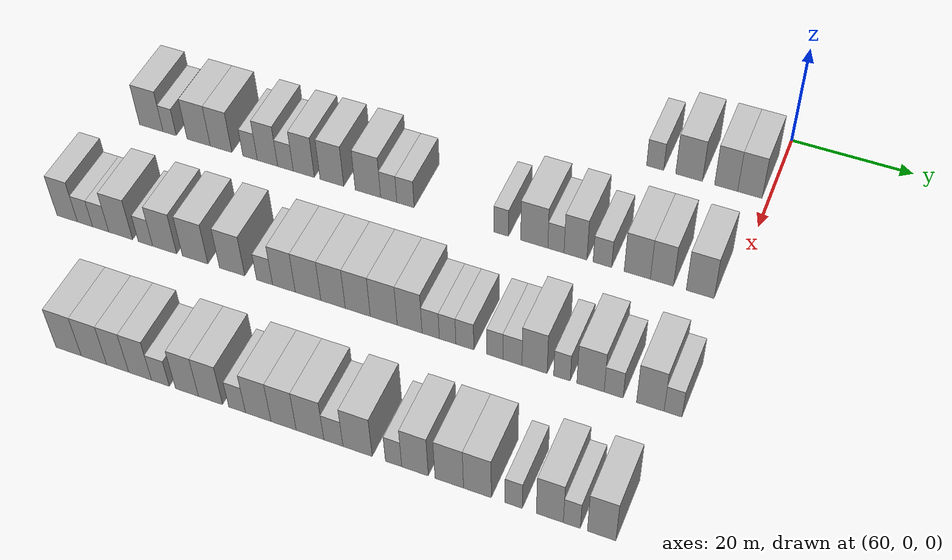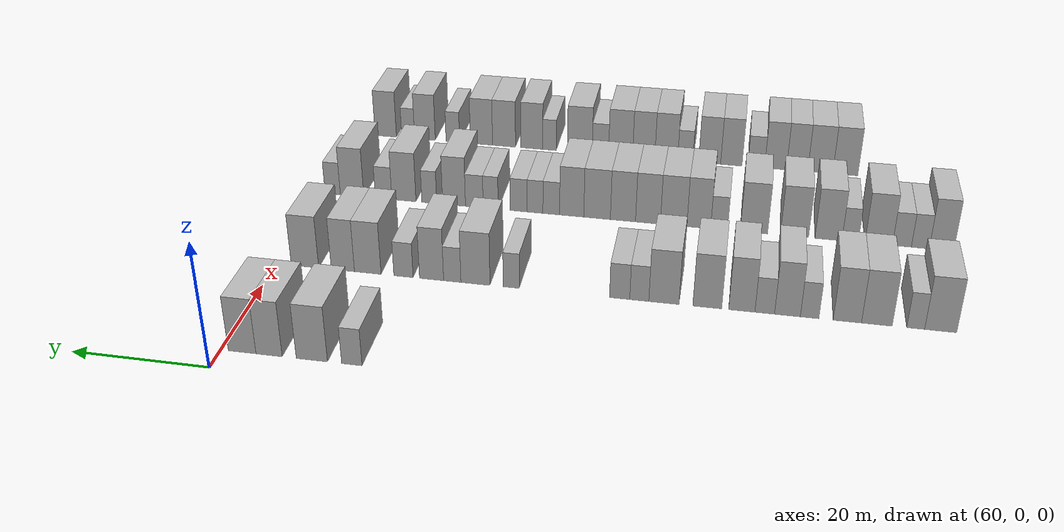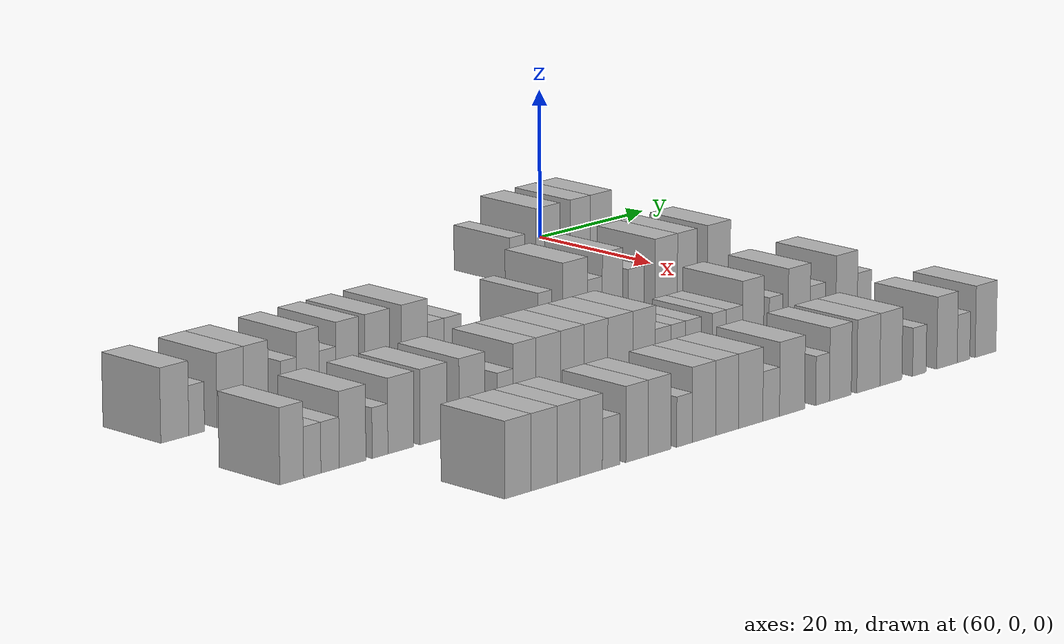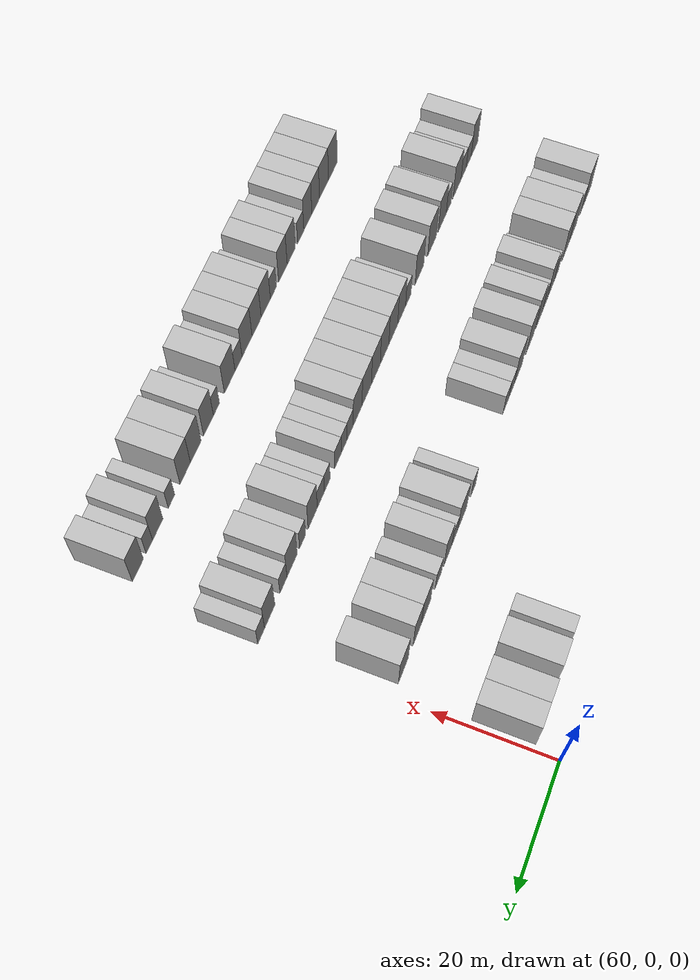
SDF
<sdf version="1.6">
 <world name="default">
  <model name="building_463">
   <static>1</static>
   <pose>69.0000 -18.7316 0 0.000000 0.000000 0.000000</pose>
   <link name="link">
    <pose>0 0 3.00 0 0 0</pose>
    <collision name="collision"><geometry><box><size>10.0000 2.8729 6.0000</size></box></geometry></collision>
    <visual name="visual">
     <cast_shadows>0</cast_shadows>
     <geometry><box><size>10.0000 2.8729 6.0000</size></box></geometry>
     <material>
      <script>
       <uri>model://HANNAS_wall/materials/scripts</uri>
       <uri>model://HANNAS_wall/materials/textures</uri>
       <name>vrc/HANNAS_wall</name>
      </script>
     </material>
    </visual>
   </link>
  </model>
  <model name="building_464">
   <static>1</static>
   <pose>69.0000 -13.0723 0 0.000000 0.000000 0.000000</pose>
   <link name="link">
    <pose>0 0 4.50 0 0 0</pose>
    <collision name="collision"><geometry><box><size>10.0000 4.4456 9.0000</size></box></geometry></collision>
    <visual name="visual">
     <cast_shadows>0</cast_shadows>
     <geometry><box><size>10.0000 4.4456 9.0000</size></box></geometry>
     <material>
      <script>
       <uri>model://HANNAS_wall/materials/scripts</uri>
       <uri>model://HANNAS_wall/materials/textures</uri>
       <name>vrc/HANNAS_wall</name>
      </script>
     </material>
    </visual>
   </link>
  </model>
  <model name="building_465">
   <static>1</static>
   <pose>69.0000 -6.9609 0 0.000000 0.000000 0.000000</pose>
   <link name="link">
    <pose>0 0 4.50 0 0 0</pose>
    <collision name="collision"><geometry><box><size>10.0000 3.7772 9.0000</size></box></geometry></collision>
    <visual name="visual">
     <cast_shadows>0</cast_shadows>
     <geometry><box><size>10.0000 3.7772 9.0000</size></box></geometry>
     <material>
      <script>
       <uri>model://HANNAS_wall/materials/scripts</uri>
       <uri>model://HANNAS_wall/materials/textures</uri>
       <name>vrc/HANNAS_wall</name>
      </script>
     </material>
    </visual>
   </link>
  </model>
  <model name="building_466">
   <static>1</static>
   <pose>69.0000 -3.0716 0 0.000000 0.000000 0.000000</pose>
   <link name="link">
    <pose>0 0 4.50 0 0 0</pose>
    <collision name="collision"><geometry><box><size>10.0000 4.0013 9.0000</size></box></geometry></collision>
    <visual name="visual">
     <cast_shadows>0</cast_shadows>
     <geometry><box><size>10.0000 4.0013 9.0000</size></box></geometry>
     <material>
      <script>
       <uri>model://HANNAS_wall/materials/scripts</uri>
       <uri>model://HANNAS_wall/materials/textures</uri>
       <name>vrc/HANNAS_wall</name>
      </script>
     </material>
    </visual>
   </link>
  </model>
  <model name="building_632">
   <static>1</static>
   <pose>91.0000 -98.0208 0 0.000000 0.000000 0.000000</pose>
   <link name="link">
    <pose>0 0 4.50 0 0 0</pose>
    <collision name="collision"><geometry><box><size>10.0000 4.3693 9.0000</size></box></geometry></collision>
    <visual name="visual">
     <cast_shadows>0</cast_shadows>
     <geometry><box><size>10.0000 4.3693 9.0000</size></box></geometry>
     <material>
      <script>
       <uri>model://HANNAS_wall/materials/scripts</uri>
       <uri>model://HANNAS_wall/materials/textures</uri>
       <name>vrc/HANNAS_wall</name>
      </script>
     </material>
    </visual>
   </link>
  </model>
  <model name="building_633">
   <static>1</static>
   <pose>91.0000 -94.6125 0 0.000000 0.000000 0.000000</pose>
   <link name="link">
    <pose>0 0 3.00 0 0 0</pose>
    <collision name="collision"><geometry><box><size>10.0000 2.4472 6.0000</size></box></geometry></collision>
    <visual name="visual">
     <cast_shadows>0</cast_shadows>
     <geometry><box><size>10.0000 2.4472 6.0000</size></box></geometry>
     <material>
      <script>
       <uri>model://HANNAS_wall/materials/scripts</uri>
       <uri>model://HANNAS_wall/materials/textures</uri>
       <name>vrc/HANNAS_wall</name>
      </script>
     </material>
    </visual>
   </link>
  </model>
  <model name="building_634">
   <static>1</static>
   <pose>91.0000 -89.2631 0 0.000000 0.000000 0.000000</pose>
   <link name="link">
    <pose>0 0 4.50 0 0 0</pose>
    <collision name="collision"><geometry><box><size>10.0000 4.2517 9.0000</size></box></geometry></collision>
    <visual name="visual">
     <cast_shadows>0</cast_shadows>
     <geometry><box><size>10.0000 4.2517 9.0000</size></box></geometry>
     <material>
      <script>
       <uri>model://HANNAS_wall/materials/scripts</uri>
       <uri>model://HANNAS_wall/materials/textures</uri>
       <name>vrc/HANNAS_wall</name>
      </script>
     </material>
    </visual>
   </link>
  </model>
  <model name="building_635">
   <static>1</static>
   <pose>91.0000 -85.1691 0 0.000000 0.000000 0.000000</pose>
   <link name="link">
    <pose>0 0 4.50 0 0 0</pose>
    <collision name="collision"><geometry><box><size>10.0000 3.9364 9.0000</size></box></geometry></collision>
    <visual name="visual">
     <cast_shadows>0</cast_shadows>
     <geometry><box><size>10.0000 3.9364 9.0000</size></box></geometry>
     <material>
      <script>
       <uri>model://HANNAS_wall/materials/scripts</uri>
       <uri>model://HANNAS_wall/materials/textures</uri>
       <name>vrc/HANNAS_wall</name>
      </script>
     </material>
    </visual>
   </link>
  </model>
  <model name="building_636">
   <static>1</static>
   <pose>91.0000 -79.8978 0 0.000000 0.000000 0.000000</pose>
   <link name="link">
    <pose>0 0 3.00 0 0 0</pose>
    <collision name="collision"><geometry><box><size>10.0000 2.6062 6.0000</size></box></geometry></collision>
    <visual name="visual">
     <cast_shadows>0</cast_shadows>
     <geometry><box><size>10.0000 2.6062 6.0000</size></box></geometry>
     <material>
      <script>
       <uri>model://HANNAS_wall/materials/scripts</uri>
       <uri>model://HANNAS_wall/materials/textures</uri>
       <name>vrc/HANNAS_wall</name>
      </script>
     </material>
    </visual>
   </link>
  </model>
  <model name="building_637">
   <static>1</static>
   <pose>91.0000 -76.7717 0 0.000000 0.000000 0.000000</pose>
   <link name="link">
    <pose>0 0 4.50 0 0 0</pose>
    <collision name="collision"><geometry><box><size>10.0000 3.6460 9.0000</size></box></geometry></collision>
    <visual name="visual">
     <cast_shadows>0</cast_shadows>
     <geometry><box><size>10.0000 3.6460 9.0000</size></box></geometry>
     <material>
      <script>
       <uri>model://HANNAS_wall/materials/scripts</uri>
       <uri>model://HANNAS_wall/materials/textures</uri>
       <name>vrc/HANNAS_wall</name>
      </script>
     </material>
    </visual>
   </link>
  </model>
  <model name="building_638">
   <static>1</static>
   <pose>91.0000 -73.5582 0 0.000000 0.000000 0.000000</pose>
   <link name="link">
    <pose>0 0 3.00 0 0 0</pose>
    <collision name="collision"><geometry><box><size>10.0000 2.7810 6.0000</size></box></geometry></collision>
    <visual name="visual">
     <cast_shadows>0</cast_shadows>
     <geometry><box><size>10.0000 2.7810 6.0000</size></box></geometry>
     <material>
      <script>
       <uri>model://HANNAS_wall/materials/scripts</uri>
       <uri>model://HANNAS_wall/materials/textures</uri>
       <name>vrc/HANNAS_wall</name>
      </script>
     </material>
    </visual>
   </link>
  </model>
  <model name="building_639">
   <static>1</static>
   <pose>91.0000 -70.2972 0 0.000000 0.000000 0.000000</pose>
   <link name="link">
    <pose>0 0 4.50 0 0 0</pose>
    <collision name="collision"><geometry><box><size>10.0000 3.7411 9.0000</size></box></geometry></collision>
    <visual name="visual">
     <cast_shadows>0</cast_shadows>
     <geometry><box><size>10.0000 3.7411 9.0000</size></box></geometry>
     <material>
      <script>
       <uri>model://HANNAS_wall/materials/scripts</uri>
       <uri>model://HANNAS_wall/materials/textures</uri>
       <name>vrc/HANNAS_wall</name>
      </script>
     </material>
    </visual>
   </link>
  </model>
  <model name="building_640">
   <static>1</static>
   <pose>91.0000 -65.3470 0 0.000000 0.000000 0.000000</pose>
   <link name="link">
    <pose>0 0 4.50 0 0 0</pose>
    <collision name="collision"><geometry><box><size>10.0000 4.1592 9.0000</size></box></geometry></collision>
    <visual name="visual">
     <cast_shadows>0</cast_shadows>
     <geometry><box><size>10.0000 4.1592 9.0000</size></box></geometry>
     <material>
      <script>
       <uri>model://HANNAS_wall/materials/scripts</uri>
       <uri>model://HANNAS_wall/materials/textures</uri>
       <name>vrc/HANNAS_wall</name>
      </script>
     </material>
    </visual>
   </link>
  </model>
  <model name="building_641">
   <static>1</static>
   <pose>91.0000 -59.0713 0 0.000000 0.000000 0.000000</pose>
   <link name="link">
    <pose>0 0 4.50 0 0 0</pose>
    <collision name="collision"><geometry><box><size>10.0000 4.3921 9.0000</size></box></geometry></collision>
    <visual name="visual">
     <cast_shadows>0</cast_shadows>
     <geometry><box><size>10.0000 4.3921 9.0000</size></box></geometry>
     <material>
      <script>
       <uri>model://HANNAS_wall/materials/scripts</uri>
       <uri>model://HANNAS_wall/materials/textures</uri>
       <name>vrc/HANNAS_wall</name>
      </script>
     </material>
    </visual>
   </link>
  </model>
  <model name="building_642">
   <static>1</static>
   <pose>91.0000 -55.4801 0 0.000000 0.000000 0.000000</pose>
   <link name="link">
    <pose>0 0 3.00 0 0 0</pose>
    <collision name="collision"><geometry><box><size>10.0000 2.7903 6.0000</size></box></geometry></collision>
    <visual name="visual">
     <cast_shadows>0</cast_shadows>
     <geometry><box><size>10.0000 2.7903 6.0000</size></box></geometry>
     <material>
      <script>
       <uri>model://HANNAS_wall/materials/scripts</uri>
       <uri>model://HANNAS_wall/materials/textures</uri>
       <name>vrc/HANNAS_wall</name>
      </script>
     </material>
    </visual>
   </link>
  </model>
  <model name="building_643">
   <static>1</static>
   <pose>91.0000 -52.5984 0 0.000000 0.000000 0.000000</pose>
   <link name="link">
    <pose>0 0 3.00 0 0 0</pose>
    <collision name="collision"><geometry><box><size>10.0000 2.9732 6.0000</size></box></geometry></collision>
    <visual name="visual">
     <cast_shadows>0</cast_shadows>
     <geometry><box><size>10.0000 2.9732 6.0000</size></box></geometry>
     <material>
      <script>
       <uri>model://HANNAS_wall/materials/scripts</uri>
       <uri>model://HANNAS_wall/materials/textures</uri>
       <name>vrc/HANNAS_wall</name>
      </script>
     </material>
    </visual>
   </link>
  </model>
  <model name="building_644">
   <static>1</static>
   <pose>91.0000 -36.4473 0 0.000000 0.000000 0.000000</pose>
   <link name="link">
    <pose>0 0 3.00 0 0 0</pose>
    <collision name="collision"><geometry><box><size>10.0000 2.4430 6.0000</size></box></geometry></collision>
    <visual name="visual">
     <cast_shadows>0</cast_shadows>
     <geometry><box><size>10.0000 2.4430 6.0000</size></box></geometry>
     <material>
      <script>
       <uri>model://HANNAS_wall/materials/scripts</uri>
       <uri>model://HANNAS_wall/materials/textures</uri>
       <name>vrc/HANNAS_wall</name>
      </script>
     </material>
    </visual>
   </link>
  </model>
  <model name="building_645">
   <static>1</static>
   <pose>91.0000 -31.0076 0 0.000000 0.000000 0.000000</pose>
   <link name="link">
    <pose>0 0 4.50 0 0 0</pose>
    <collision name="collision"><geometry><box><size>10.0000 4.4364 9.0000</size></box></geometry></collision>
    <visual name="visual">
     <cast_shadows>0</cast_shadows>
     <geometry><box><size>10.0000 4.4364 9.0000</size></box></geometry>
     <material>
      <script>
       <uri>model://HANNAS_wall/materials/scripts</uri>
       <uri>model://HANNAS_wall/materials/textures</uri>
       <name>vrc/HANNAS_wall</name>
      </script>
     </material>
    </visual>
   </link>
  </model>
  <model name="building_646">
   <static>1</static>
   <pose>91.0000 -27.4618 0 0.000000 0.000000 0.000000</pose>
   <link name="link">
    <pose>0 0 3.00 0 0 0</pose>
    <collision name="collision"><geometry><box><size>10.0000 2.6550 6.0000</size></box></geometry></collision>
    <visual name="visual">
     <cast_shadows>0</cast_shadows>
     <geometry><box><size>10.0000 2.6550 6.0000</size></box></geometry>
     <material>
      <script>
       <uri>model://HANNAS_wall/materials/scripts</uri>
       <uri>model://HANNAS_wall/materials/textures</uri>
       <name>vrc/HANNAS_wall</name>
      </script>
     </material>
    </visual>
   </link>
  </model>
  <model name="building_647">
   <static>1</static>
   <pose>91.0000 -24.2839 0 0.000000 0.000000 0.000000</pose>
   <link name="link">
    <pose>0 0 4.50 0 0 0</pose>
    <collision name="collision"><geometry><box><size>10.0000 3.7008 9.0000</size></box></geometry></collision>
    <visual name="visual">
     <cast_shadows>0</cast_shadows>
     <geometry><box><size>10.0000 3.7008 9.0000</size></box></geometry>
     <material>
      <script>
       <uri>model://HANNAS_wall/materials/scripts</uri>
       <uri>model://HANNAS_wall/materials/textures</uri>
       <name>vrc/HANNAS_wall</name>
      </script>
     </material>
    </visual>
   </link>
  </model>
  <model name="building_648">
   <static>1</static>
   <pose>91.0000 -19.9415 0 0.000000 0.000000 0.000000</pose>
   <link name="link">
    <pose>0 0 3.00 0 0 0</pose>
    <collision name="collision"><geometry><box><size>10.0000 2.9840 6.0000</size></box></geometry></collision>
    <visual name="visual">
     <cast_shadows>0</cast_shadows>
     <geometry><box><size>10.0000 2.9840 6.0000</size></box></geometry>
     <material>
      <script>
       <uri>model://HANNAS_wall/materials/scripts</uri>
       <uri>model://HANNAS_wall/materials/textures</uri>
       <name>vrc/HANNAS_wall</name>
      </script>
     </material>
    </visual>
   </link>
  </model>
  <model name="building_649">
   <static>1</static>
   <pose>91.0000 -14.3700 0 0.000000 0.000000 0.000000</pose>
   <link name="link">
    <pose>0 0 4.50 0 0 0</pose>
    <collision name="collision"><geometry><box><size>10.0000 4.1591 9.0000</size></box></geometry></collision>
    <visual name="visual">
     <cast_shadows>0</cast_shadows>
     <geometry><box><size>10.0000 4.1591 9.0000</size></box></geometry>
     <material>
      <script>
       <uri>model://HANNAS_wall/materials/scripts</uri>
       <uri>model://HANNAS_wall/materials/textures</uri>
       <name>vrc/HANNAS_wall</name>
      </script>
     </material>
    </visual>
   </link>
  </model>
  <model name="building_650">
   <static>1</static>
   <pose>91.0000 -10.4665 0 0.000000 0.000000 0.000000</pose>
   <link name="link">
    <pose>0 0 4.50 0 0 0</pose>
    <collision name="collision"><geometry><box><size>10.0000 3.6479 9.0000</size></box></geometry></collision>
    <visual name="visual">
     <cast_shadows>0</cast_shadows>
     <geometry><box><size>10.0000 3.6479 9.0000</size></box></geometry>
     <material>
      <script>
       <uri>model://HANNAS_wall/materials/scripts</uri>
       <uri>model://HANNAS_wall/materials/textures</uri>
       <name>vrc/HANNAS_wall</name>
      </script>
     </material>
    </visual>
   </link>
  </model>
  <model name="building_651">
   <static>1</static>
   <pose>91.0000 -4.4629 0 0.000000 0.000000 0.000000</pose>
   <link name="link">
    <pose>0 0 4.50 0 0 0</pose>
    <collision name="collision"><geometry><box><size>10.0000 4.3592 9.0000</size></box></geometry></collision>
    <visual name="visual">
     <cast_shadows>0</cast_shadows>
     <geometry><box><size>10.0000 4.3592 9.0000</size></box></geometry>
     <material>
      <script>
       <uri>model://HANNAS_wall/materials/scripts</uri>
       <uri>model://HANNAS_wall/materials/textures</uri>
       <name>vrc/HANNAS_wall</name>
      </script>
     </material>
    </visual>
   </link>
  </model>
  <model name="building_823">
   <static>1</static>
   <pose>113.0000 -100.3300 0 0.000000 0.000000 0.000000</pose>
   <link name="link">
    <pose>0 0 4.50 0 0 0</pose>
    <collision name="collision"><geometry><box><size>10.0000 3.6826 9.0000</size></box></geometry></collision>
    <visual name="visual">
     <cast_shadows>0</cast_shadows>
     <geometry><box><size>10.0000 3.6826 9.0000</size></box></geometry>
     <material>
      <script>
       <uri>model://HANNAS_wall/materials/scripts</uri>
       <uri>model://HANNAS_wall/materials/textures</uri>
       <name>vrc/HANNAS_wall</name>
      </script>
     </material>
    </visual>
   </link>
  </model>
  <model name="building_824">
   <static>1</static>
   <pose>113.0000 -97.1358 0 0.000000 0.000000 0.000000</pose>
   <link name="link">
    <pose>0 0 3.00 0 0 0</pose>
    <collision name="collision"><geometry><box><size>10.0000 2.7059 6.0000</size></box></geometry></collision>
    <visual name="visual">
     <cast_shadows>0</cast_shadows>
     <geometry><box><size>10.0000 2.7059 6.0000</size></box></geometry>
     <material>
      <script>
       <uri>model://HANNAS_wall/materials/scripts</uri>
       <uri>model://HANNAS_wall/materials/textures</uri>
       <name>vrc/HANNAS_wall</name>
      </script>
     </material>
    </visual>
   </link>
  </model>
  <model name="building_825">
   <static>1</static>
   <pose>113.0000 -94.3459 0 0.000000 0.000000 0.000000</pose>
   <link name="link">
    <pose>0 0 3.00 0 0 0</pose>
    <collision name="collision"><geometry><box><size>10.0000 2.8739 6.0000</size></box></geometry></collision>
    <visual name="visual">
     <cast_shadows>0</cast_shadows>
     <geometry><box><size>10.0000 2.8739 6.0000</size></box></geometry>
     <material>
      <script>
       <uri>model://HANNAS_wall/materials/scripts</uri>
       <uri>model://HANNAS_wall/materials/textures</uri>
       <name>vrc/HANNAS_wall</name>
      </script>
     </material>
    </visual>
   </link>
  </model>
  <model name="building_826">
   <static>1</static>
   <pose>113.0000 -90.8028 0 0.000000 0.000000 0.000000</pose>
   <link name="link">
    <pose>0 0 4.50 0 0 0</pose>
    <collision name="collision"><geometry><box><size>10.0000 4.2122 9.0000</size></box></geometry></collision>
    <visual name="visual">
     <cast_shadows>0</cast_shadows>
     <geometry><box><size>10.0000 4.2122 9.0000</size></box></geometry>
     <material>
      <script>
       <uri>model://HANNAS_wall/materials/scripts</uri>
       <uri>model://HANNAS_wall/materials/textures</uri>
       <name>vrc/HANNAS_wall</name>
      </script>
     </material>
    </visual>
   </link>
  </model>
  <model name="building_827">
   <static>1</static>
   <pose>113.0000 -86.4400 0 0.000000 0.000000 0.000000</pose>
   <link name="link">
    <pose>0 0 3.00 0 0 0</pose>
    <collision name="collision"><geometry><box><size>10.0000 2.5136 6.0000</size></box></geometry></collision>
    <visual name="visual">
     <cast_shadows>0</cast_shadows>
     <geometry><box><size>10.0000 2.5136 6.0000</size></box></geometry>
     <material>
      <script>
       <uri>model://HANNAS_wall/materials/scripts</uri>
       <uri>model://HANNAS_wall/materials/textures</uri>
       <name>vrc/HANNAS_wall</name>
      </script>
     </material>
    </visual>
   </link>
  </model>
  <model name="building_828">
   <static>1</static>
   <pose>113.0000 -83.0996 0 0.000000 0.000000 0.000000</pose>
   <link name="link">
    <pose>0 0 4.50 0 0 0</pose>
    <collision name="collision"><geometry><box><size>10.0000 4.1671 9.0000</size></box></geometry></collision>
    <visual name="visual">
     <cast_shadows>0</cast_shadows>
     <geometry><box><size>10.0000 4.1671 9.0000</size></box></geometry>
     <material>
      <script>
       <uri>model://HANNAS_wall/materials/scripts</uri>
       <uri>model://HANNAS_wall/materials/textures</uri>
       <name>vrc/HANNAS_wall</name>
      </script>
     </material>
    </visual>
   </link>
  </model>
  <model name="building_829">
   <static>1</static>
   <pose>113.0000 -77.8217 0 0.000000 0.000000 0.000000</pose>
   <link name="link">
    <pose>0 0 4.50 0 0 0</pose>
    <collision name="collision"><geometry><box><size>10.0000 4.3888 9.0000</size></box></geometry></collision>
    <visual name="visual">
     <cast_shadows>0</cast_shadows>
     <geometry><box><size>10.0000 4.3888 9.0000</size></box></geometry>
     <material>
      <script>
       <uri>model://HANNAS_wall/materials/scripts</uri>
       <uri>model://HANNAS_wall/materials/textures</uri>
       <name>vrc/HANNAS_wall</name>
      </script>
     </material>
    </visual>
   </link>
  </model>
  <model name="building_830">
   <static>1</static>
   <pose>113.0000 -71.4779 0 0.000000 0.000000 0.000000</pose>
   <link name="link">
    <pose>0 0 4.50 0 0 0</pose>
    <collision name="collision"><geometry><box><size>10.0000 4.2988 9.0000</size></box></geometry></collision>
    <visual name="visual">
     <cast_shadows>0</cast_shadows>
     <geometry><box><size>10.0000 4.2988 9.0000</size></box></geometry>
     <material>
      <script>
       <uri>model://HANNAS_wall/materials/scripts</uri>
       <uri>model://HANNAS_wall/materials/textures</uri>
       <name>vrc/HANNAS_wall</name>
      </script>
     </material>
    </visual>
   </link>
  </model>
  <model name="building_831">
   <static>1</static>
   <pose>113.0000 -65.9855 0 0.000000 0.000000 0.000000</pose>
   <link name="link">
    <pose>0 0 3.00 0 0 0</pose>
    <collision name="collision"><geometry><box><size>10.0000 2.6860 6.0000</size></box></geometry></collision>
    <visual name="visual">
     <cast_shadows>0</cast_shadows>
     <geometry><box><size>10.0000 2.6860 6.0000</size></box></geometry>
     <material>
      <script>
       <uri>model://HANNAS_wall/materials/scripts</uri>
       <uri>model://HANNAS_wall/materials/textures</uri>
       <name>vrc/HANNAS_wall</name>
      </script>
     </material>
    </visual>
   </link>
  </model>
  <model name="building_832">
   <static>1</static>
   <pose>113.0000 -62.7474 0 0.000000 0.000000 0.000000</pose>
   <link name="link">
    <pose>0 0 4.50 0 0 0</pose>
    <collision name="collision"><geometry><box><size>10.0000 3.7903 9.0000</size></box></geometry></collision>
    <visual name="visual">
     <cast_shadows>0</cast_shadows>
     <geometry><box><size>10.0000 3.7903 9.0000</size></box></geometry>
     <material>
      <script>
       <uri>model://HANNAS_wall/materials/scripts</uri>
       <uri>model://HANNAS_wall/materials/textures</uri>
       <name>vrc/HANNAS_wall</name>
      </script>
     </material>
    </visual>
   </link>
  </model>
  <model name="building_833">
   <static>1</static>
   <pose>113.0000 -58.7308 0 0.000000 0.000000 0.000000</pose>
   <link name="link">
    <pose>0 0 4.50 0 0 0</pose>
    <collision name="collision"><geometry><box><size>10.0000 4.2431 9.0000</size></box></geometry></collision>
    <visual name="visual">
     <cast_shadows>0</cast_shadows>
     <geometry><box><size>10.0000 4.2431 9.0000</size></box></geometry>
     <material>
      <script>
       <uri>model://HANNAS_wall/materials/scripts</uri>
       <uri>model://HANNAS_wall/materials/textures</uri>
       <name>vrc/HANNAS_wall</name>
      </script>
     </material>
    </visual>
   </link>
  </model>
  <model name="building_834">
   <static>1</static>
   <pose>113.0000 -54.5992 0 0.000000 0.000000 0.000000</pose>
   <link name="link">
    <pose>0 0 4.50 0 0 0</pose>
    <collision name="collision"><geometry><box><size>10.0000 4.0200 9.0000</size></box></geometry></collision>
    <visual name="visual">
     <cast_shadows>0</cast_shadows>
     <geometry><box><size>10.0000 4.0200 9.0000</size></box></geometry>
     <material>
      <script>
       <uri>model://HANNAS_wall/materials/scripts</uri>
       <uri>model://HANNAS_wall/materials/textures</uri>
       <name>vrc/HANNAS_wall</name>
      </script>
     </material>
    </visual>
   </link>
  </model>
  <model name="building_835">
   <static>1</static>
   <pose>113.0000 -50.5507 0 0.000000 0.000000 0.000000</pose>
   <link name="link">
    <pose>0 0 4.50 0 0 0</pose>
    <collision name="collision"><geometry><box><size>10.0000 4.0769 9.0000</size></box></geometry></collision>
    <visual name="visual">
     <cast_shadows>0</cast_shadows>
     <geometry><box><size>10.0000 4.0769 9.0000</size></box></geometry>
     <material>
      <script>
       <uri>model://HANNAS_wall/materials/scripts</uri>
       <uri>model://HANNAS_wall/materials/textures</uri>
       <name>vrc/HANNAS_wall</name>
      </script>
     </material>
    </visual>
   </link>
  </model>
  <model name="building_836">
   <static>1</static>
   <pose>113.0000 -46.3388 0 0.000000 0.000000 0.000000</pose>
   <link name="link">
    <pose>0 0 4.50 0 0 0</pose>
    <collision name="collision"><geometry><box><size>10.0000 4.3470 9.0000</size></box></geometry></collision>
    <visual name="visual">
     <cast_shadows>0</cast_shadows>
     <geometry><box><size>10.0000 4.3470 9.0000</size></box></geometry>
     <material>
      <script>
       <uri>model://HANNAS_wall/materials/scripts</uri>
       <uri>model://HANNAS_wall/materials/textures</uri>
       <name>vrc/HANNAS_wall</name>
      </script>
     </material>
    </visual>
   </link>
  </model>
  <model name="building_837">
   <static>1</static>
   <pose>113.0000 -42.1723 0 0.000000 0.000000 0.000000</pose>
   <link name="link">
    <pose>0 0 4.50 0 0 0</pose>
    <collision name="collision"><geometry><box><size>10.0000 3.9861 9.0000</size></box></geometry></collision>
    <visual name="visual">
     <cast_shadows>0</cast_shadows>
     <geometry><box><size>10.0000 3.9861 9.0000</size></box></geometry>
     <material>
      <script>
       <uri>model://HANNAS_wall/materials/scripts</uri>
       <uri>model://HANNAS_wall/materials/textures</uri>
       <name>vrc/HANNAS_wall</name>
      </script>
     </material>
    </visual>
   </link>
  </model>
  <model name="building_838">
   <static>1</static>
   <pose>113.0000 -38.8043 0 0.000000 0.000000 0.000000</pose>
   <link name="link">
    <pose>0 0 3.00 0 0 0</pose>
    <collision name="collision"><geometry><box><size>10.0000 2.7499 6.0000</size></box></geometry></collision>
    <visual name="visual">
     <cast_shadows>0</cast_shadows>
     <geometry><box><size>10.0000 2.7499 6.0000</size></box></geometry>
     <material>
      <script>
       <uri>model://HANNAS_wall/materials/scripts</uri>
       <uri>model://HANNAS_wall/materials/textures</uri>
       <name>vrc/HANNAS_wall</name>
      </script>
     </material>
    </visual>
   </link>
  </model>
  <model name="building_839">
   <static>1</static>
   <pose>113.0000 -36.1176 0 0.000000 0.000000 0.000000</pose>
   <link name="link">
    <pose>0 0 3.00 0 0 0</pose>
    <collision name="collision"><geometry><box><size>10.0000 2.6235 6.0000</size></box></geometry></collision>
    <visual name="visual">
     <cast_shadows>0</cast_shadows>
     <geometry><box><size>10.0000 2.6235 6.0000</size></box></geometry>
     <material>
      <script>
       <uri>model://HANNAS_wall/materials/scripts</uri>
       <uri>model://HANNAS_wall/materials/textures</uri>
       <name>vrc/HANNAS_wall</name>
      </script>
     </material>
    </visual>
   </link>
  </model>
  <model name="building_840">
   <static>1</static>
   <pose>113.0000 -33.3901 0 0.000000 0.000000 0.000000</pose>
   <link name="link">
    <pose>0 0 3.00 0 0 0</pose>
    <collision name="collision"><geometry><box><size>10.0000 2.8314 6.0000</size></box></geometry></collision>
    <visual name="visual">
     <cast_shadows>0</cast_shadows>
     <geometry><box><size>10.0000 2.8314 6.0000</size></box></geometry>
     <material>
      <script>
       <uri>model://HANNAS_wall/materials/scripts</uri>
       <uri>model://HANNAS_wall/materials/textures</uri>
       <name>vrc/HANNAS_wall</name>
      </script>
     </material>
    </visual>
   </link>
  </model>
  <model name="building_841">
   <static>1</static>
   <pose>113.0000 -28.7176 0 0.000000 0.000000 0.000000</pose>
   <link name="link">
    <pose>0 0 3.00 0 0 0</pose>
    <collision name="collision"><geometry><box><size>10.0000 2.5137 6.0000</size></box></geometry></collision>
    <visual name="visual">
     <cast_shadows>0</cast_shadows>
     <geometry><box><size>10.0000 2.5137 6.0000</size></box></geometry>
     <material>
      <script>
       <uri>model://HANNAS_wall/materials/scripts</uri>
       <uri>model://HANNAS_wall/materials/textures</uri>
       <name>vrc/HANNAS_wall</name>
      </script>
     </material>
    </visual>
   </link>
  </model>
  <model name="building_842">
   <static>1</static>
   <pose>113.0000 -25.9692 0 0.000000 0.000000 0.000000</pose>
   <link name="link">
    <pose>0 0 3.00 0 0 0</pose>
    <collision name="collision"><geometry><box><size>10.0000 2.9832 6.0000</size></box></geometry></collision>
    <visual name="visual">
     <cast_shadows>0</cast_shadows>
     <geometry><box><size>10.0000 2.9832 6.0000</size></box></geometry>
     <material>
      <script>
       <uri>model://HANNAS_wall/materials/scripts</uri>
       <uri>model://HANNAS_wall/materials/textures</uri>
       <name>vrc/HANNAS_wall</name>
      </script>
     </material>
    </visual>
   </link>
  </model>
  <model name="building_843">
   <static>1</static>
   <pose>113.0000 -22.5442 0 0.000000 0.000000 0.000000</pose>
   <link name="link">
    <pose>0 0 4.50 0 0 0</pose>
    <collision name="collision"><geometry><box><size>10.0000 3.8668 9.0000</size></box></geometry></collision>
    <visual name="visual">
     <cast_shadows>0</cast_shadows>
     <geometry><box><size>10.0000 3.8668 9.0000</size></box></geometry>
     <material>
      <script>
       <uri>model://HANNAS_wall/materials/scripts</uri>
       <uri>model://HANNAS_wall/materials/textures</uri>
       <name>vrc/HANNAS_wall</name>
      </script>
     </material>
    </visual>
   </link>
  </model>
  <model name="building_844">
   <static>1</static>
   <pose>113.0000 -18.3446 0 0.000000 0.000000 0.000000</pose>
   <link name="link">
    <pose>0 0 3.00 0 0 0</pose>
    <collision name="collision"><geometry><box><size>10.0000 2.5324 6.0000</size></box></geometry></collision>
    <visual name="visual">
     <cast_shadows>0</cast_shadows>
     <geometry><box><size>10.0000 2.5324 6.0000</size></box></geometry>
     <material>
      <script>
       <uri>model://HANNAS_wall/materials/scripts</uri>
       <uri>model://HANNAS_wall/materials/textures</uri>
       <name>vrc/HANNAS_wall</name>
      </script>
     </material>
    </visual>
   </link>
  </model>
  <model name="building_845">
   <static>1</static>
   <pose>113.0000 -14.0111 0 0.000000 0.000000 0.000000</pose>
   <link name="link">
    <pose>0 0 4.50 0 0 0</pose>
    <collision name="collision"><geometry><box><size>10.0000 4.1347 9.0000</size></box></geometry></collision>
    <visual name="visual">
     <cast_shadows>0</cast_shadows>
     <geometry><box><size>10.0000 4.1347 9.0000</size></box></geometry>
     <material>
      <script>
       <uri>model://HANNAS_wall/materials/scripts</uri>
       <uri>model://HANNAS_wall/materials/textures</uri>
       <name>vrc/HANNAS_wall</name>
      </script>
     </material>
    </visual>
   </link>
  </model>
  <model name="building_846">
   <static>1</static>
   <pose>113.0000 -10.5217 0 0.000000 0.000000 0.000000</pose>
   <link name="link">
    <pose>0 0 3.00 0 0 0</pose>
    <collision name="collision"><geometry><box><size>10.0000 2.8441 6.0000</size></box></geometry></collision>
    <visual name="visual">
     <cast_shadows>0</cast_shadows>
     <geometry><box><size>10.0000 2.8441 6.0000</size></box></geometry>
     <material>
      <script>
       <uri>model://HANNAS_wall/materials/scripts</uri>
       <uri>model://HANNAS_wall/materials/textures</uri>
       <name>vrc/HANNAS_wall</name>
      </script>
     </material>
    </visual>
   </link>
  </model>
  <model name="building_847">
   <static>1</static>
   <pose>113.0000 -5.0575 0 0.000000 0.000000 0.000000</pose>
   <link name="link">
    <pose>0 0 4.50 0 0 0</pose>
    <collision name="collision"><geometry><box><size>10.0000 4.0842 9.0000</size></box></geometry></collision>
    <visual name="visual">
     <cast_shadows>0</cast_shadows>
     <geometry><box><size>10.0000 4.0842 9.0000</size></box></geometry>
     <material>
      <script>
       <uri>model://HANNAS_wall/materials/scripts</uri>
       <uri>model://HANNAS_wall/materials/textures</uri>
       <name>vrc/HANNAS_wall</name>
      </script>
     </material>
    </visual>
   </link>
  </model>
  <model name="building_848">
   <static>1</static>
   <pose>113.0000 -1.6882 0 0.000000 0.000000 0.000000</pose>
   <link name="link">
    <pose>0 0 3.00 0 0 0</pose>
    <collision name="collision"><geometry><box><size>10.0000 2.6544 6.0000</size></box></geometry></collision>
    <visual name="visual">
     <cast_shadows>0</cast_shadows>
     <geometry><box><size>10.0000 2.6544 6.0000</size></box></geometry>
     <material>
      <script>
       <uri>model://HANNAS_wall/materials/scripts</uri>
       <uri>model://HANNAS_wall/materials/textures</uri>
       <name>vrc/HANNAS_wall</name>
      </script>
     </material>
    </visual>
   </link>
  </model>
  <model name="building_1016">
   <static>1</static>
   <pose>135.0000 -86.4950 0 0.000000 0.000000 0.000000</pose>
   <link name="link">
    <pose>0 0 4.50 0 0 0</pose>
    <collision name="collision"><geometry><box><size>10.0000 4.2256 9.0000</size></box></geometry></collision>
    <visual name="visual">
     <cast_shadows>0</cast_shadows>
     <geometry><box><size>10.0000 4.2256 9.0000</size></box></geometry>
     <material>
      <script>
       <uri>model://HANNAS_wall/materials/scripts</uri>
       <uri>model://HANNAS_wall/materials/textures</uri>
       <name>vrc/HANNAS_wall</name>
      </script>
     </material>
    </visual>
   </link>
  </model>
  <model name="building_1017">
   <static>1</static>
   <pose>135.0000 -82.2612 0 0.000000 0.000000 0.000000</pose>
   <link name="link">
    <pose>0 0 4.50 0 0 0</pose>
    <collision name="collision"><geometry><box><size>10.0000 4.2420 9.0000</size></box></geometry></collision>
    <visual name="visual">
     <cast_shadows>0</cast_shadows>
     <geometry><box><size>10.0000 4.2420 9.0000</size></box></geometry>
     <material>
      <script>
       <uri>model://HANNAS_wall/materials/scripts</uri>
       <uri>model://HANNAS_wall/materials/textures</uri>
       <name>vrc/HANNAS_wall</name>
      </script>
     </material>
    </visual>
   </link>
  </model>
  <model name="building_1018">
   <static>1</static>
   <pose>135.0000 -78.3272 0 0.000000 0.000000 0.000000</pose>
   <link name="link">
    <pose>0 0 4.50 0 0 0</pose>
    <collision name="collision"><geometry><box><size>10.0000 3.6261 9.0000</size></box></geometry></collision>
    <visual name="visual">
     <cast_shadows>0</cast_shadows>
     <geometry><box><size>10.0000 3.6261 9.0000</size></box></geometry>
     <material>
      <script>
       <uri>model://HANNAS_wall/materials/scripts</uri>
       <uri>model://HANNAS_wall/materials/textures</uri>
       <name>vrc/HANNAS_wall</name>
      </script>
     </material>
    </visual>
   </link>
  </model>
  <model name="building_1019">
   <static>1</static>
   <pose>135.0000 -74.6461 0 0.000000 0.000000 0.000000</pose>
   <link name="link">
    <pose>0 0 4.50 0 0 0</pose>
    <collision name="collision"><geometry><box><size>10.0000 3.7361 9.0000</size></box></geometry></collision>
    <visual name="visual">
     <cast_shadows>0</cast_shadows>
     <geometry><box><size>10.0000 3.7361 9.0000</size></box></geometry>
     <material>
      <script>
       <uri>model://HANNAS_wall/materials/scripts</uri>
       <uri>model://HANNAS_wall/materials/textures</uri>
       <name>vrc/HANNAS_wall</name>
      </script>
     </material>
    </visual>
   </link>
  </model>
  <model name="building_1020">
   <static>1</static>
   <pose>135.0000 -71.3323 0 0.000000 0.000000 0.000000</pose>
   <link name="link">
    <pose>0 0 3.00 0 0 0</pose>
    <collision name="collision"><geometry><box><size>10.0000 2.8914 6.0000</size></box></geometry></collision>
    <visual name="visual">
     <cast_shadows>0</cast_shadows>
     <geometry><box><size>10.0000 2.8914 6.0000</size></box></geometry>
     <material>
      <script>
       <uri>model://HANNAS_wall/materials/scripts</uri>
       <uri>model://HANNAS_wall/materials/textures</uri>
       <name>vrc/HANNAS_wall</name>
      </script>
     </material>
    </visual>
   </link>
  </model>
  <model name="building_1021">
   <static>1</static>
   <pose>135.0000 -67.0342 0 0.000000 0.000000 0.000000</pose>
   <link name="link">
    <pose>0 0 4.50 0 0 0</pose>
    <collision name="collision"><geometry><box><size>10.0000 3.7048 9.0000</size></box></geometry></collision>
    <visual name="visual">
     <cast_shadows>0</cast_shadows>
     <geometry><box><size>10.0000 3.7048 9.0000</size></box></geometry>
     <material>
      <script>
       <uri>model://HANNAS_wall/materials/scripts</uri>
       <uri>model://HANNAS_wall/materials/textures</uri>
       <name>vrc/HANNAS_wall</name>
      </script>
     </material>
    </visual>
   </link>
  </model>
  <model name="building_1022">
   <static>1</static>
   <pose>135.0000 -63.2614 0 0.000000 0.000000 0.000000</pose>
   <link name="link">
    <pose>0 0 4.50 0 0 0</pose>
    <collision name="collision"><geometry><box><size>10.0000 3.8409 9.0000</size></box></geometry></collision>
    <visual name="visual">
     <cast_shadows>0</cast_shadows>
     <geometry><box><size>10.0000 3.8409 9.0000</size></box></geometry>
     <material>
      <script>
       <uri>model://HANNAS_wall/materials/scripts</uri>
       <uri>model://HANNAS_wall/materials/textures</uri>
       <name>vrc/HANNAS_wall</name>
      </script>
     </material>
    </visual>
   </link>
  </model>
  <model name="building_1023">
   <static>1</static>
   <pose>135.0000 -59.0157 0 0.000000 0.000000 0.000000</pose>
   <link name="link">
    <pose>0 0 3.00 0 0 0</pose>
    <collision name="collision"><geometry><box><size>10.0000 2.6505 6.0000</size></box></geometry></collision>
    <visual name="visual">
     <cast_shadows>0</cast_shadows>
     <geometry><box><size>10.0000 2.6505 6.0000</size></box></geometry>
     <material>
      <script>
       <uri>model://HANNAS_wall/materials/scripts</uri>
       <uri>model://HANNAS_wall/materials/textures</uri>
       <name>vrc/HANNAS_wall</name>
      </script>
     </material>
    </visual>
   </link>
  </model>
  <model name="building_1024">
   <static>1</static>
   <pose>135.0000 -55.6826 0 0.000000 0.000000 0.000000</pose>
   <link name="link">
    <pose>0 0 4.50 0 0 0</pose>
    <collision name="collision"><geometry><box><size>10.0000 4.0156 9.0000</size></box></geometry></collision>
    <visual name="visual">
     <cast_shadows>0</cast_shadows>
     <geometry><box><size>10.0000 4.0156 9.0000</size></box></geometry>
     <material>
      <script>
       <uri>model://HANNAS_wall/materials/scripts</uri>
       <uri>model://HANNAS_wall/materials/textures</uri>
       <name>vrc/HANNAS_wall</name>
      </script>
     </material>
    </visual>
   </link>
  </model>
  <model name="building_1025">
   <static>1</static>
   <pose>135.0000 -51.7087 0 0.000000 0.000000 0.000000</pose>
   <link name="link">
    <pose>0 0 4.50 0 0 0</pose>
    <collision name="collision"><geometry><box><size>10.0000 3.9323 9.0000</size></box></geometry></collision>
    <visual name="visual">
     <cast_shadows>0</cast_shadows>
     <geometry><box><size>10.0000 3.9323 9.0000</size></box></geometry>
     <material>
      <script>
       <uri>model://HANNAS_wall/materials/scripts</uri>
       <uri>model://HANNAS_wall/materials/textures</uri>
       <name>vrc/HANNAS_wall</name>
      </script>
     </material>
    </visual>
   </link>
  </model>
  <model name="building_1026">
   <static>1</static>
   <pose>135.0000 -47.6024 0 0.000000 0.000000 0.000000</pose>
   <link name="link">
    <pose>0 0 4.50 0 0 0</pose>
    <collision name="collision"><geometry><box><size>10.0000 4.2803 9.0000</size></box></geometry></collision>
    <visual name="visual">
     <cast_shadows>0</cast_shadows>
     <geometry><box><size>10.0000 4.2803 9.0000</size></box></geometry>
     <material>
      <script>
       <uri>model://HANNAS_wall/materials/scripts</uri>
       <uri>model://HANNAS_wall/materials/textures</uri>
       <name>vrc/HANNAS_wall</name>
      </script>
     </material>
    </visual>
   </link>
  </model>
  <model name="building_1027">
   <static>1</static>
   <pose>135.0000 -43.9953 0 0.000000 0.000000 0.000000</pose>
   <link name="link">
    <pose>0 0 3.00 0 0 0</pose>
    <collision name="collision"><geometry><box><size>10.0000 2.9338 6.0000</size></box></geometry></collision>
    <visual name="visual">
     <cast_shadows>0</cast_shadows>
     <geometry><box><size>10.0000 2.9338 6.0000</size></box></geometry>
     <material>
      <script>
       <uri>model://HANNAS_wall/materials/scripts</uri>
       <uri>model://HANNAS_wall/materials/textures</uri>
       <name>vrc/HANNAS_wall</name>
      </script>
     </material>
    </visual>
   </link>
  </model>
  <model name="building_1028">
   <static>1</static>
   <pose>135.0000 -40.3015 0 0.000000 0.000000 0.000000</pose>
   <link name="link">
    <pose>0 0 4.50 0 0 0</pose>
    <collision name="collision"><geometry><box><size>10.0000 4.4538 9.0000</size></box></geometry></collision>
    <visual name="visual">
     <cast_shadows>0</cast_shadows>
     <geometry><box><size>10.0000 4.4538 9.0000</size></box></geometry>
     <material>
      <script>
       <uri>model://HANNAS_wall/materials/scripts</uri>
       <uri>model://HANNAS_wall/materials/textures</uri>
       <name>vrc/HANNAS_wall</name>
      </script>
     </material>
    </visual>
   </link>
  </model>
  <model name="building_1029">
   <static>1</static>
   <pose>135.0000 -34.8504 0 0.000000 0.000000 0.000000</pose>
   <link name="link">
    <pose>0 0 3.00 0 0 0</pose>
    <collision name="collision"><geometry><box><size>10.0000 2.4483 6.0000</size></box></geometry></collision>
    <visual name="visual">
     <cast_shadows>0</cast_shadows>
     <geometry><box><size>10.0000 2.4483 6.0000</size></box></geometry>
     <material>
      <script>
       <uri>model://HANNAS_wall/materials/scripts</uri>
       <uri>model://HANNAS_wall/materials/textures</uri>
       <name>vrc/HANNAS_wall</name>
      </script>
     </material>
    </visual>
   </link>
  </model>
  <model name="building_1030">
   <static>1</static>
   <pose>135.0000 -31.6435 0 0.000000 0.000000 0.000000</pose>
   <link name="link">
    <pose>0 0 4.50 0 0 0</pose>
    <collision name="collision"><geometry><box><size>10.0000 3.9656 9.0000</size></box></geometry></collision>
    <visual name="visual">
     <cast_shadows>0</cast_shadows>
     <geometry><box><size>10.0000 3.9656 9.0000</size></box></geometry>
     <material>
      <script>
       <uri>model://HANNAS_wall/materials/scripts</uri>
       <uri>model://HANNAS_wall/materials/textures</uri>
       <name>vrc/HANNAS_wall</name>
      </script>
     </material>
    </visual>
   </link>
  </model>
  <model name="building_1031">
   <static>1</static>
   <pose>135.0000 -26.5589 0 0.000000 0.000000 0.000000</pose>
   <link name="link">
    <pose>0 0 4.50 0 0 0</pose>
    <collision name="collision"><geometry><box><size>10.0000 4.2036 9.0000</size></box></geometry></collision>
    <visual name="visual">
     <cast_shadows>0</cast_shadows>
     <geometry><box><size>10.0000 4.2036 9.0000</size></box></geometry>
     <material>
      <script>
       <uri>model://HANNAS_wall/materials/scripts</uri>
       <uri>model://HANNAS_wall/materials/textures</uri>
       <name>vrc/HANNAS_wall</name>
      </script>
     </material>
    </visual>
   </link>
  </model>
  <model name="building_1032">
   <static>1</static>
   <pose>135.0000 -22.4199 0 0.000000 0.000000 0.000000</pose>
   <link name="link">
    <pose>0 0 4.50 0 0 0</pose>
    <collision name="collision"><geometry><box><size>10.0000 4.0745 9.0000</size></box></geometry></collision>
    <visual name="visual">
     <cast_shadows>0</cast_shadows>
     <geometry><box><size>10.0000 4.0745 9.0000</size></box></geometry>
     <material>
      <script>
       <uri>model://HANNAS_wall/materials/scripts</uri>
       <uri>model://HANNAS_wall/materials/textures</uri>
       <name>vrc/HANNAS_wall</name>
      </script>
     </material>
    </visual>
   </link>
  </model>
  <model name="building_1033">
   <static>1</static>
   <pose>135.0000 -17.1298 0 0.000000 0.000000 0.000000</pose>
   <link name="link">
    <pose>0 0 3.00 0 0 0</pose>
    <collision name="collision"><geometry><box><size>10.0000 2.5058 6.0000</size></box></geometry></collision>
    <visual name="visual">
     <cast_shadows>0</cast_shadows>
     <geometry><box><size>10.0000 2.5058 6.0000</size></box></geometry>
     <material>
      <script>
       <uri>model://HANNAS_wall/materials/scripts</uri>
       <uri>model://HANNAS_wall/materials/textures</uri>
       <name>vrc/HANNAS_wall</name>
      </script>
     </material>
    </visual>
   </link>
  </model>
  <model name="building_1034">
   <static>1</static>
   <pose>135.0000 -11.9464 0 0.000000 0.000000 0.000000</pose>
   <link name="link">
    <pose>0 0 4.50 0 0 0</pose>
    <collision name="collision"><geometry><box><size>10.0000 3.8609 9.0000</size></box></geometry></collision>
    <visual name="visual">
     <cast_shadows>0</cast_shadows>
     <geometry><box><size>10.0000 3.8609 9.0000</size></box></geometry>
     <material>
      <script>
       <uri>model://HANNAS_wall/materials/scripts</uri>
       <uri>model://HANNAS_wall/materials/textures</uri>
       <name>vrc/HANNAS_wall</name>
      </script>
     </material>
    </visual>
   </link>
  </model>
  <model name="building_1035">
   <static>1</static>
   <pose>135.0000 -8.8085 0 0.000000 0.000000 0.000000</pose>
   <link name="link">
    <pose>0 0 3.00 0 0 0</pose>
    <collision name="collision"><geometry><box><size>10.0000 2.4149 6.0000</size></box></geometry></collision>
    <visual name="visual">
     <cast_shadows>0</cast_shadows>
     <geometry><box><size>10.0000 2.4149 6.0000</size></box></geometry>
     <material>
      <script>
       <uri>model://HANNAS_wall/materials/scripts</uri>
       <uri>model://HANNAS_wall/materials/textures</uri>
       <name>vrc/HANNAS_wall</name>
      </script>
     </material>
    </visual>
   </link>
  </model>
  <model name="building_1036">
   <static>1</static>
   <pose>135.0000 -4.5917 0 0.000000 0.000000 0.000000</pose>
   <link name="link">
    <pose>0 0 4.50 0 0 0</pose>
    <collision name="collision"><geometry><box><size>10.0000 4.0187 9.0000</size></box></geometry></collision>
    <visual name="visual">
     <cast_shadows>0</cast_shadows>
     <geometry><box><size>10.0000 4.0187 9.0000</size></box></geometry>
     <material>
      <script>
       <uri>model://HANNAS_wall/materials/scripts</uri>
       <uri>model://HANNAS_wall/materials/textures</uri>
       <name>vrc/HANNAS_wall</name>
      </script>
     </material>
    </visual>
   </link>
  </model>
 </world>
</sdf>
